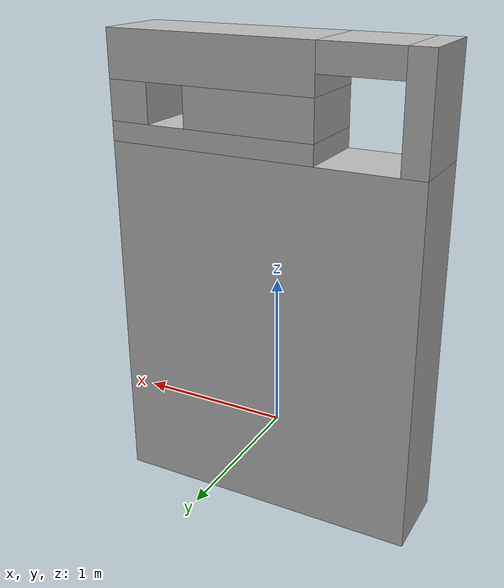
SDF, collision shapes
<?xml version="1.0" ?>
<sdf version="1.6">
  <model name="placard">
    <pose>0 0 1 0 0 0</pose>
    <!-- The white placard -->
    <link name="link">
      <collision name="collision_1">
        <pose>-0.9234 0.0 1.164 0.0 0.0 0.0</pose>
        <geometry>
          <box>
            <size>0.153199 0.500 0.672</size>
          </box>
        </geometry>
      </collision>
      <collision name="collision_2">
        <pose>-0.596803 0.0 1.41357 -3.14159 -1.5708 0.0</pose>
        <geometry>
          <box>
            <size>0.17285 0.5 0.5</size>
          </box>
        </geometry>
      </collision>
      <collision name="collision_3">
        <pose>0.326598 0.0 1.35111 0.0 0.0 0.0</pose>
        <geometry>
          <box>
            <size>1.3468 0.500 0.29777</size>
          </box>
        </geometry>
      </collision>
      <collision name="collision_4">
        <pose>0.070527 0.0 1.07723 0.0 0.0 0.0</pose>
        <geometry>
          <box>
            <size>0.834664 0.500 0.25</size>
          </box>
        </geometry>
      </collision>
      <collision name="collision_6">
        <pose>0.326598 0.0 0.890117 0.0 0.0 0.0</pose>
        <geometry>
          <box>
            <size>1.3468 0.500 0.124233</size>
          </box>
        </geometry>
      </collision>
      <collision name="collision_5">
        <pose>0.868936 0.0 1.07723 1.5708 0.0 1.5708</pose>
        <geometry>
          <box>
            <size>0.500 0.25 0.262128</size>
          </box>
        </geometry>
      </collision>
      <collision name="collision_7">
        <pose>0.0 0.0 -0.336 0.0 0.0 0.0</pose>
        <geometry>
          <box>
            <size>2.000 0.500 2.328</size>
          </box>
        </geometry>
      </collision>
      <visual name="visual">
        <geometry>
          <mesh>
            <uri>meshes/placard_2022.dae</uri>
          </mesh>
        </geometry>
      </visual>
    </link>
    <plugin filename="gz-sim-label-system" name="gz::sim::systems::Label">
      <label>7</label>
    </plugin>
  </model>
</sdf>
